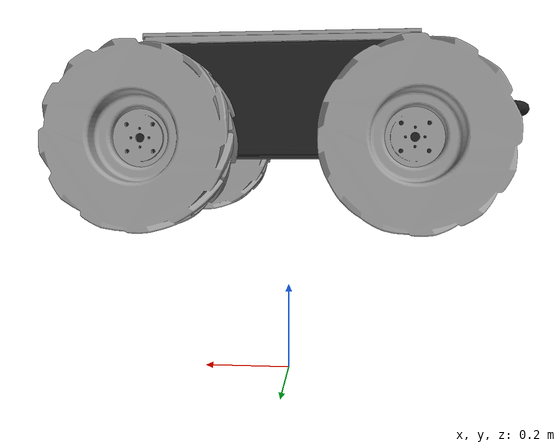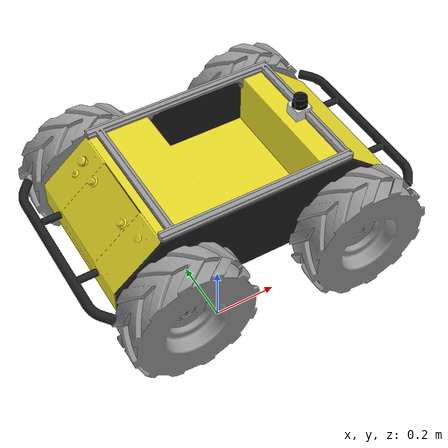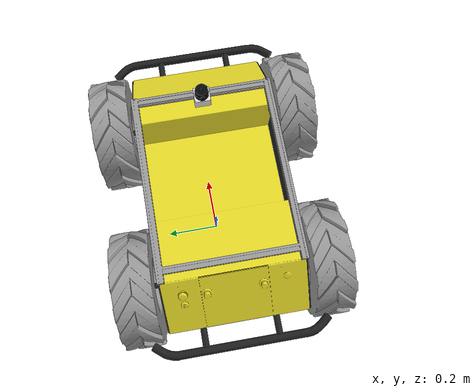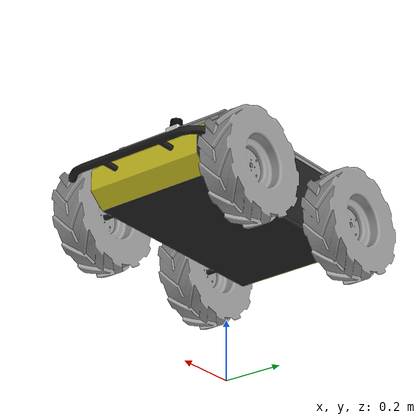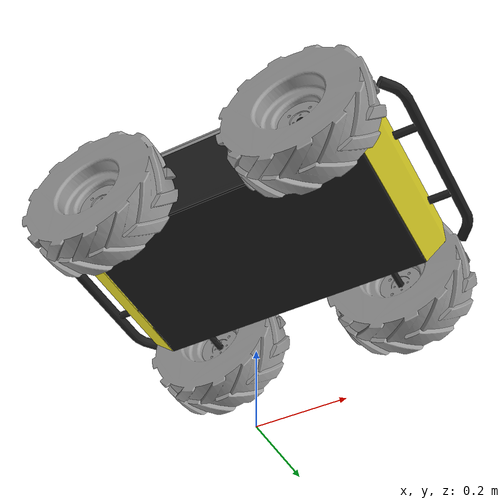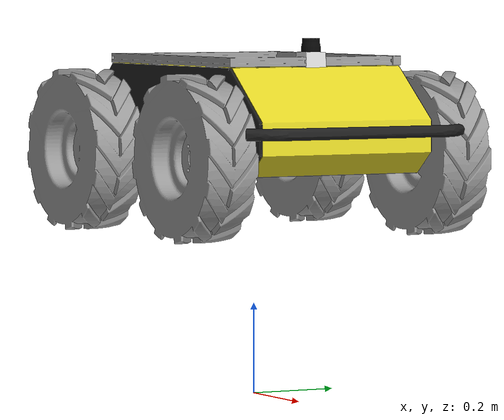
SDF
<?xml version="1.0" ?>
<sdf version="1.5">
  <model name="husky">
    <pose>0 0 .5 0 0 0</pose>
    <!-- Main Chassis -->
    <link name="base_link">
      <!-- Physics -->
      <collision name="collision">
        <pose>0 0 0.1 0 0 0</pose>
        <geometry>
          <box>
            <size>1.0074 0.5709 0.2675</size>
          </box>
        </geometry>
      </collision>
      <inertial>
        <mass>33.855</mass>
        <pose>-0.0856132 -0.000839955 0.238145 0 0 0</pose>
        <inertia>
          <ixx>2.2343</ixx>
          <ixy>-0.023642</ixy>
          <ixz>0.275174</ixz>
          <iyy>3.42518</iyy>
          <iyz>0.00239624</iyz>
          <izz>2.1241</izz>
        </inertia>
      </inertial>
      <!-- Visual -->
      <!-- Base frame -->
      <visual name="base">
        <pose>0 0 0 0 0 0</pose>
        <geometry>
          <mesh>
            <uri>model://husky/meshes/base_link.stl</uri>
          </mesh>
        </geometry>
        <material>
          <script>
            <name>Gazebo/FlatBlack</name>
          </script>
        </material>
      </visual>
      <!-- Top Plate -->
      <visual name="top_plate">
        <pose>0 0 0 0 0 0</pose>
        <geometry>
          <mesh>
            <uri>model://husky/meshes/top_plate.stl</uri>
          </mesh>
        </geometry>
        <material>
          <script>
            <name>Gazebo/Yellow</name>
          </script>
        </material>
      </visual>
      <!-- Front Bumper -->
      <visual name="front_bumper">
        <pose>0.47 0 0.091 0 0 0</pose>
        <geometry>
          <mesh>
            <uri>model://husky/meshes/bumper.stl</uri>
          </mesh>
        </geometry>
        <material>
          <script>
            <name>Gazebo/FlatBlack</name>
          </script>
        </material>
      </visual>
      <!-- Rear Bumper -->
      <visual name="rear_bumper">
        <pose>-0.47 0 0.091 0 0 3.141</pose>
        <geometry>
          <mesh>
            <uri>model://husky/meshes/bumper.stl</uri>
          </mesh>
        </geometry>
        <material>
          <script>
            <name>Gazebo/FlatBlack</name>
          </script>
        </material>
      </visual>
      <!-- User Rail -->
      <visual name="user_rail">
        <pose>0.272 0 0.245 0 0 0</pose>
        <geometry>
          <mesh>
            <uri>model://husky/meshes/user_rail.stl</uri>
          </mesh>
        </geometry>
        <material>
          <script>
            <name>Gazebo/Grey</name>
          </script>
        </material>
      </visual>
    </link>
    <!-- Back Left Wheel -->
    <link name="back_left_wheel">
      <pose>-0.256 0.285475 0.035 0 0 0</pose>
      <inertial>
        <mass>2.6357</mass>
        <pose>0 0 0 0 0 0</pose>
        <inertia>
          <ixx>0.0246688</ixx>
          <ixy>0</ixy>
          <ixz>0</ixz>
          <iyy>0.0246688</iyy>
          <iyz>0</iyz>
          <izz>0.0441058</izz>
        </inertia>
      </inertial>
      <collision name="back_left_wheel_collision">
        <pose>0 0 0 -1.5707 0 0</pose>
        <geometry>
          <cylinder>
            <radius>0.17775</radius>
            <length>0.1143</length>
          </cylinder>
        </geometry>
        <surface>
          <friction>
            <ode>
              <mu>0.0</mu>
              <mu2>0.0</mu2>
              <slip1>0.0</slip1>
              <slip2>0.0</slip2>
            </ode>
          </friction>
        </surface>
      </collision>
      <visual name="back_left_wheel">
        <pose>0 0 0 -3.14159 0 0</pose>
        <geometry>
          <mesh>
            <uri>model://husky/meshes/wheel.stl</uri>
          </mesh>
        </geometry>
        <material>
          <script>
            <name>Gazebo/Grey</name>
          </script>
        </material>
      </visual>
    </link>
    <joint name="back_left_joint" type="revolute">
      <parent>base_link</parent>
      <child>back_left_wheel</child>
      <axis>
        <xyz>0 1 0</xyz>
        <use_parent_model_frame>true</use_parent_model_frame>
      </axis>
      <physics>
        <ode>
          <limit>
            <cfm>0.000000</cfm>
            <erp>0.900000</erp>
          </limit>
        </ode>
      </physics>
    </joint>
    <!-- Back Right Wheel -->
    <link name="back_right_wheel">
      <pose>-0.256 -0.285475 0.035 0 0 0</pose>
      <inertial>
        <mass>2.6357</mass>
        <pose>0 0 0 0 0 0</pose>
        <inertia>
          <ixx>0.0246688</ixx>
          <ixy>0</ixy>
          <ixz>0</ixz>
          <iyy>0.0246688</iyy>
          <iyz>0</iyz>
          <izz>0.0441058</izz>
        </inertia>
      </inertial>
      <collision name="back_right_wheel_collision">
        <pose>0 0 0 -1.5707 0 0</pose>
        <geometry>
          <cylinder>
            <radius>0.17775</radius>
            <length>0.1143</length>
          </cylinder>
        </geometry>
        <surface>
          <friction>
            <ode>
              <mu>0.0</mu>
              <mu2>0.0</mu2>
              <slip1>0.0</slip1>
              <slip2>0.0</slip2>
            </ode>
          </friction>
        </surface>
      </collision>
      <visual name="back_right_wheel">
        <pose>0 0 0 -3.14159 0 0</pose>
        <geometry>
          <mesh>
            <uri>model://husky/meshes/wheel.stl</uri>
          </mesh>
        </geometry>
        <material>
          <script>
            <name>Gazebo/Grey</name>
          </script>
        </material>
      </visual>
    </link>
    <joint name="back_right_joint" type="revolute">
      <parent>base_link</parent>
      <child>back_right_wheel</child>
      <axis>
        <xyz>0 1 0</xyz>
        <use_parent_model_frame>true</use_parent_model_frame>
      </axis>
      <physics>
        <ode>
          <limit>
            <cfm>0.000000</cfm>
            <erp>0.900000</erp>
          </limit>
        </ode>
      </physics>
    </joint>
    <!-- Front Left Wheel -->
    <link name="front_left_wheel">
      <pose>0.256 0.285475 0.035 0 0 0</pose>
      <inertial>
        <mass>2.6357</mass>
        <pose>0 0 0 0 0 0</pose>
        <inertia>
          <ixx>0.0246688</ixx>
          <ixy>0</ixy>
          <ixz>0</ixz>
          <iyy>0.0246688</iyy>
          <iyz>0</iyz>
          <izz>0.0441058</izz>
        </inertia>
      </inertial>
      <collision name="front_left_wheel_collision">
        <pose>0 0 0 -1.5707 0 0</pose>
        <geometry>
          <cylinder>
            <radius>0.17775</radius>
            <length>0.1143</length>
          </cylinder>
        </geometry>
        <surface>
          <friction>
            <ode>
              <mu>0.0</mu>
              <mu2>0.0</mu2>
              <slip1>0.0</slip1>
              <slip2>0.0</slip2>
            </ode>
          </friction>
        </surface>
      </collision>
      <visual name="front_left_wheel">
        <pose>0 0 0 -3.14159 0 0</pose>
        <geometry>
          <mesh>
            <uri>model://husky/meshes/wheel.stl</uri>
          </mesh>
        </geometry>
        <material>
          <script>
            <name>Gazebo/Grey</name>
          </script>
        </material>
      </visual>
    </link>
    <joint name="front_left_joint" type="revolute">
      <parent>base_link</parent>
      <child>front_left_wheel</child>
      <axis>
        <xyz>0 1 0</xyz>
        <use_parent_model_frame>true</use_parent_model_frame>
      </axis>
      <physics>
        <ode>
          <limit>
            <cfm>0.000000</cfm>
            <erp>0.900000</erp>
          </limit>
        </ode>
      </physics>
    </joint>
    <!-- Front Right Wheel -->
    <link name="front_right_wheel">
      <pose>0.256 -0.285475 0.035 0 0 0</pose>
      <inertial>
        <mass>2.6357</mass>
        <pose>0 0 0 0 0 0</pose>
        <inertia>
          <ixx>0.0246688</ixx>
          <ixy>0</ixy>
          <ixz>0</ixz>
          <iyy>0.0246688</iyy>
          <iyz>0</iyz>
          <izz>0.0441058</izz>
        </inertia>
      </inertial>
      <collision name="front_right_wheel_collision">
        <pose>0 0 0 -1.5707 0 0</pose>
        <geometry>
          <cylinder>
            <radius>0.17775</radius>
            <length>0.1143</length>
          </cylinder>
        </geometry>
        <surface>
          <friction>
            <ode>
              <mu>0.0</mu>
              <mu2>0.0</mu2>
              <slip1>0.0</slip1>
              <slip2>0.0</slip2>
            </ode>
          </friction>
        </surface>
      </collision>
      <visual name="front_right_wheel">
        <pose>0 0 0 -3.14159 0 0</pose>
        <geometry>
          <mesh>
            <uri>model://husky/meshes/wheel.stl</uri>
          </mesh>
        </geometry>
        <material>
          <script>
            <name>Gazebo/Grey</name>
          </script>
        </material>
      </visual>
    </link>
    <joint name="front_right_joint" type="revolute">
      <parent>base_link</parent>
      <child>front_right_wheel</child>
      <axis>
        <xyz>0 1 0</xyz>
        <use_parent_model_frame>true</use_parent_model_frame>
      </axis>
      <physics>
        <ode>
          <limit>
            <cfm>0.000000</cfm>
            <erp>0.900000</erp>
          </limit>
        </ode>
      </physics>
    </joint>
    <!-- LiDAR -->
    <link name="Lidar">
      <pose> 0.25 0 0.25 0 -0 0 </pose>
        <visual name="visual">
          <geometry>
            <mesh>
              <uri>model://hokuyo/meshes/hokuyo.dae</uri>
            </mesh>
          </geometry>
        </visual>
        <sensor name="laser" type="ray">
          <pose>0.01 0 0.0175 0 -0 0</pose>
          <ray>
            <scan>
              <horizontal>
                <samples>360</samples>
                <resolution>1</resolution>
                <min_angle>-3.14</min_angle>
                <max_angle>3.14</max_angle>
              </horizontal>
            </scan>
            <range>
              <min>0.01</min>
              <max>4</max>
              <resolution>0.01</resolution>
            </range>
          </ray>
          <plugin name="laser" filename="libgazebo_ros_laser.so">
            <topicName>scan</topicName>
            <frameName>Lidar</frameName>
          </plugin>
          <always_on>1</always_on>
          <update_rate>30</update_rate>
          <visualize>true</visualize>
      </sensor>
    </link>
    <joint type="fixed" name="Lidar_hinge">
      <pose>0 0 0.0 0 0 0</pose>
      <child>Lidar</child>
      <parent>base_link</parent>
      <axis>
        <xyz>0 0 1</xyz>
      </axis>
    </joint>
    <plugin name="object_controller" filename="libgazebo_ros_planar_move.so">
      <commandTopic>cmd_vel</commandTopic>
      <odometryTopic>odom</odometryTopic>
      <odometryFrame>odom</odometryFrame>
      <odometryRate>20.0</odometryRate>
      <robotBaseFrame>base_link</robotBaseFrame>
    </plugin>
  </model>
</sdf>
